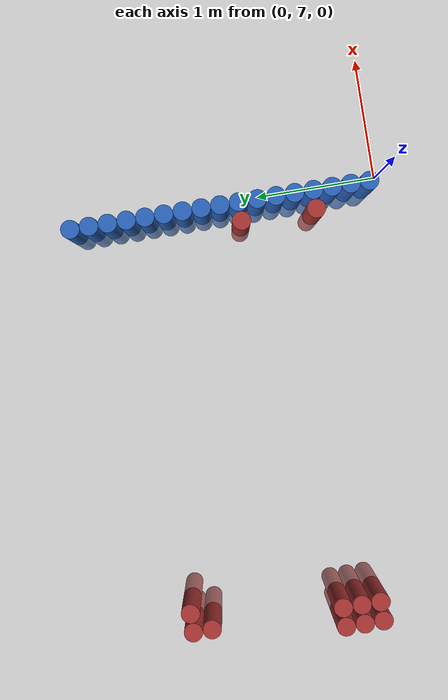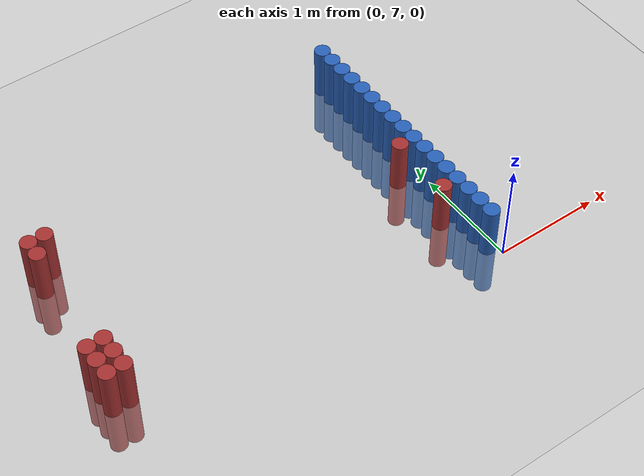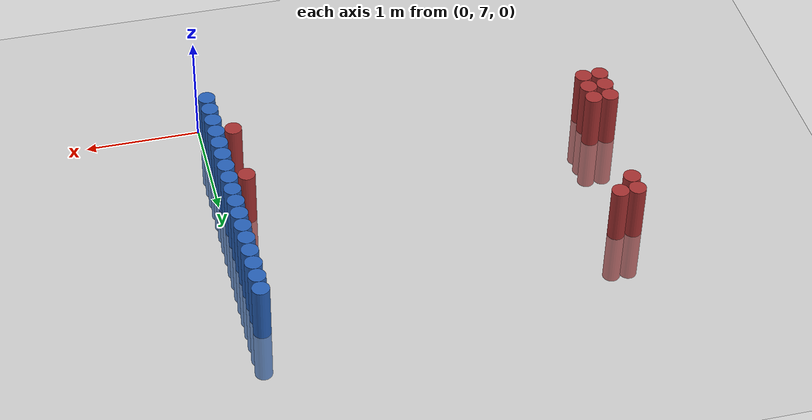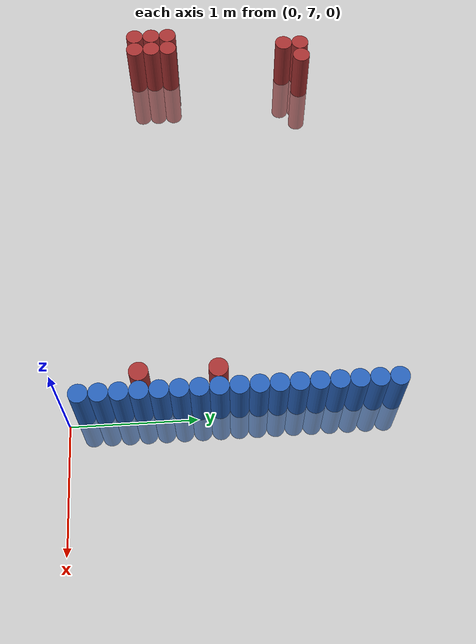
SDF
<sdf version="1.6">
 <world name="world_209">
  <model name="ground_plane">
   <static>1</static>
   <link name="link">
    <collision name="collision">
     <geometry><plane><normal>0 0 1</normal><size>100 100</size></plane></geometry>
     <surface><friction><ode><mu>100</mu><mu2>50</mu2></ode></friction></surface>
    </collision>
    <visual name="visual">
     <cast_shadows>0</cast_shadows>
     <geometry><plane><normal>0 0 1</normal><size>100 100</size></plane></geometry>
     <material>
      <script><uri>file://media/materials/scripts/gazebo.material</uri><name>Gazebo/Grey</name></script>
     </material>
    </visual>
   </link>
  </model>
  <model name="unit_cylinder_160">
   <static>1</static>
   <pose>-3.525000 7.575000 0.000000 0.000000 0.000000 0.000000</pose>
   <link name="link">
    <inertial>
     <mass>1</mass>
     <inertia><ixx>0.145833</ixx><ixy>0</ixy><ixz>0</ixz><iyy>0.145833</iyy><iyz>0</iyz><izz>0.125</izz></inertia>
    </inertial>
    <collision name="collision">
     <geometry><cylinder><radius>0.075000</radius><length>1</length></cylinder></geometry>
    </collision>
    <visual name="visual">
     <geometry><cylinder><radius>0.075000</radius><length>1</length></cylinder></geometry>
     <material>
      <ambient>0.648000 0.192000 0.192000 1</ambient>
      <diffuse>0.648000 0.192000 0.192000 1</diffuse>
     </material>
     <material>
      <script><name>Gazebo/Grey</name><uri>file://media/materials/scripts/gazebo.material</uri></script>
     </material>
    </visual>
   </link>
  </model>
  <model name="unit_cylinder_161">
   <static>1</static>
   <pose>-3.525000 7.725000 0.000000 0.000000 0.000000 0.000000</pose>
   <link name="link">
    <inertial>
     <mass>1</mass>
     <inertia><ixx>0.145833</ixx><ixy>0</ixy><ixz>0</ixz><iyy>0.145833</iyy><iyz>0</iyz><izz>0.125</izz></inertia>
    </inertial>
    <collision name="collision">
     <geometry><cylinder><radius>0.075000</radius><length>1</length></cylinder></geometry>
    </collision>
    <visual name="visual">
     <geometry><cylinder><radius>0.075000</radius><length>1</length></cylinder></geometry>
     <material>
      <ambient>0.648000 0.192000 0.192000 1</ambient>
      <diffuse>0.648000 0.192000 0.192000 1</diffuse>
     </material>
     <material>
      <script><name>Gazebo/Grey</name><uri>file://media/materials/scripts/gazebo.material</uri></script>
     </material>
    </visual>
   </link>
  </model>
  <model name="unit_cylinder_162">
   <static>1</static>
   <pose>-3.525000 7.875000 0.000000 0.000000 0.000000 0.000000</pose>
   <link name="link">
    <inertial>
     <mass>1</mass>
     <inertia><ixx>0.145833</ixx><ixy>0</ixy><ixz>0</ixz><iyy>0.145833</iyy><iyz>0</iyz><izz>0.125</izz></inertia>
    </inertial>
    <collision name="collision">
     <geometry><cylinder><radius>0.075000</radius><length>1</length></cylinder></geometry>
    </collision>
    <visual name="visual">
     <geometry><cylinder><radius>0.075000</radius><length>1</length></cylinder></geometry>
     <material>
      <ambient>0.648000 0.192000 0.192000 1</ambient>
      <diffuse>0.648000 0.192000 0.192000 1</diffuse>
     </material>
     <material>
      <script><name>Gazebo/Grey</name><uri>file://media/materials/scripts/gazebo.material</uri></script>
     </material>
    </visual>
   </link>
  </model>
  <model name="unit_cylinder_163">
   <static>1</static>
   <pose>-3.375000 7.575000 0.000000 0.000000 0.000000 0.000000</pose>
   <link name="link">
    <inertial>
     <mass>1</mass>
     <inertia><ixx>0.145833</ixx><ixy>0</ixy><ixz>0</ixz><iyy>0.145833</iyy><iyz>0</iyz><izz>0.125</izz></inertia>
    </inertial>
    <collision name="collision">
     <geometry><cylinder><radius>0.075000</radius><length>1</length></cylinder></geometry>
    </collision>
    <visual name="visual">
     <geometry><cylinder><radius>0.075000</radius><length>1</length></cylinder></geometry>
     <material>
      <ambient>0.648000 0.192000 0.192000 1</ambient>
      <diffuse>0.648000 0.192000 0.192000 1</diffuse>
     </material>
     <material>
      <script><name>Gazebo/Grey</name><uri>file://media/materials/scripts/gazebo.material</uri></script>
     </material>
    </visual>
   </link>
  </model>
  <model name="unit_cylinder_164">
   <static>1</static>
   <pose>-3.375000 7.725000 0.000000 0.000000 0.000000 0.000000</pose>
   <link name="link">
    <inertial>
     <mass>1</mass>
     <inertia><ixx>0.145833</ixx><ixy>0</ixy><ixz>0</ixz><iyy>0.145833</iyy><iyz>0</iyz><izz>0.125</izz></inertia>
    </inertial>
    <collision name="collision">
     <geometry><cylinder><radius>0.075000</radius><length>1</length></cylinder></geometry>
    </collision>
    <visual name="visual">
     <geometry><cylinder><radius>0.075000</radius><length>1</length></cylinder></geometry>
     <material>
      <ambient>0.648000 0.192000 0.192000 1</ambient>
      <diffuse>0.648000 0.192000 0.192000 1</diffuse>
     </material>
     <material>
      <script><name>Gazebo/Grey</name><uri>file://media/materials/scripts/gazebo.material</uri></script>
     </material>
    </visual>
   </link>
  </model>
  <model name="unit_cylinder_165">
   <static>1</static>
   <pose>-3.375000 7.875000 0.000000 0.000000 0.000000 0.000000</pose>
   <link name="link">
    <inertial>
     <mass>1</mass>
     <inertia><ixx>0.145833</ixx><ixy>0</ixy><ixz>0</ixz><iyy>0.145833</iyy><iyz>0</iyz><izz>0.125</izz></inertia>
    </inertial>
    <collision name="collision">
     <geometry><cylinder><radius>0.075000</radius><length>1</length></cylinder></geometry>
    </collision>
    <visual name="visual">
     <geometry><cylinder><radius>0.075000</radius><length>1</length></cylinder></geometry>
     <material>
      <ambient>0.648000 0.192000 0.192000 1</ambient>
      <diffuse>0.648000 0.192000 0.192000 1</diffuse>
     </material>
     <material>
      <script><name>Gazebo/Grey</name><uri>file://media/materials/scripts/gazebo.material</uri></script>
     </material>
    </visual>
   </link>
  </model>
  <model name="unit_cylinder_166">
   <static>1</static>
   <pose>-3.375000 8.925000 0.000000 0.000000 0.000000 0.000000</pose>
   <link name="link">
    <inertial>
     <mass>1</mass>
     <inertia><ixx>0.145833</ixx><ixy>0</ixy><ixz>0</ixz><iyy>0.145833</iyy><iyz>0</iyz><izz>0.125</izz></inertia>
    </inertial>
    <collision name="collision">
     <geometry><cylinder><radius>0.075000</radius><length>1</length></cylinder></geometry>
    </collision>
    <visual name="visual">
     <geometry><cylinder><radius>0.075000</radius><length>1</length></cylinder></geometry>
     <material>
      <ambient>0.648000 0.192000 0.192000 1</ambient>
      <diffuse>0.648000 0.192000 0.192000 1</diffuse>
     </material>
     <material>
      <script><name>Gazebo/Grey</name><uri>file://media/materials/scripts/gazebo.material</uri></script>
     </material>
    </visual>
   </link>
  </model>
  <model name="unit_cylinder_167">
   <static>1</static>
   <pose>-3.375000 9.075000 0.000000 0.000000 0.000000 0.000000</pose>
   <link name="link">
    <inertial>
     <mass>1</mass>
     <inertia><ixx>0.145833</ixx><ixy>0</ixy><ixz>0</ixz><iyy>0.145833</iyy><iyz>0</iyz><izz>0.125</izz></inertia>
    </inertial>
    <collision name="collision">
     <geometry><cylinder><radius>0.075000</radius><length>1</length></cylinder></geometry>
    </collision>
    <visual name="visual">
     <geometry><cylinder><radius>0.075000</radius><length>1</length></cylinder></geometry>
     <material>
      <ambient>0.648000 0.192000 0.192000 1</ambient>
      <diffuse>0.648000 0.192000 0.192000 1</diffuse>
     </material>
     <material>
      <script><name>Gazebo/Grey</name><uri>file://media/materials/scripts/gazebo.material</uri></script>
     </material>
    </visual>
   </link>
  </model>
  <model name="unit_cylinder_168">
   <static>1</static>
   <pose>-3.225000 9.075000 0.000000 0.000000 0.000000 0.000000</pose>
   <link name="link">
    <inertial>
     <mass>1</mass>
     <inertia><ixx>0.145833</ixx><ixy>0</ixy><ixz>0</ixz><iyy>0.145833</iyy><iyz>0</iyz><izz>0.125</izz></inertia>
    </inertial>
    <collision name="collision">
     <geometry><cylinder><radius>0.075000</radius><length>1</length></cylinder></geometry>
    </collision>
    <visual name="visual">
     <geometry><cylinder><radius>0.075000</radius><length>1</length></cylinder></geometry>
     <material>
      <ambient>0.648000 0.192000 0.192000 1</ambient>
      <diffuse>0.648000 0.192000 0.192000 1</diffuse>
     </material>
     <material>
      <script><name>Gazebo/Grey</name><uri>file://media/materials/scripts/gazebo.material</uri></script>
     </material>
    </visual>
   </link>
  </model>
  <model name="unit_cylinder_186">
   <static>1</static>
   <pose>-0.225000 7.575000 0.000000 0.000000 0.000000 0.000000</pose>
   <link name="link">
    <inertial>
     <mass>1</mass>
     <inertia><ixx>0.145833</ixx><ixy>0</ixy><ixz>0</ixz><iyy>0.145833</iyy><iyz>0</iyz><izz>0.125</izz></inertia>
    </inertial>
    <collision name="collision">
     <geometry><cylinder><radius>0.075000</radius><length>1</length></cylinder></geometry>
    </collision>
    <visual name="visual">
     <geometry><cylinder><radius>0.075000</radius><length>1</length></cylinder></geometry>
     <material>
      <ambient>0.648000 0.192000 0.192000 1</ambient>
      <diffuse>0.648000 0.192000 0.192000 1</diffuse>
     </material>
     <material>
      <script><name>Gazebo/Grey</name><uri>file://media/materials/scripts/gazebo.material</uri></script>
     </material>
    </visual>
   </link>
  </model>
  <model name="unit_cylinder_187">
   <static>1</static>
   <pose>-0.225000 8.175000 0.000000 0.000000 0.000000 0.000000</pose>
   <link name="link">
    <inertial>
     <mass>1</mass>
     <inertia><ixx>0.145833</ixx><ixy>0</ixy><ixz>0</ixz><iyy>0.145833</iyy><iyz>0</iyz><izz>0.125</izz></inertia>
    </inertial>
    <collision name="collision">
     <geometry><cylinder><radius>0.075000</radius><length>1</length></cylinder></geometry>
    </collision>
    <visual name="visual">
     <geometry><cylinder><radius>0.075000</radius><length>1</length></cylinder></geometry>
     <material>
      <ambient>0.648000 0.192000 0.192000 1</ambient>
      <diffuse>0.648000 0.192000 0.192000 1</diffuse>
     </material>
     <material>
      <script><name>Gazebo/Grey</name><uri>file://media/materials/scripts/gazebo.material</uri></script>
     </material>
    </visual>
   </link>
  </model>
  <model name="unit_cylinder_201">
   <static>1</static>
   <pose>-0.075000 7.125000 0.000000 0.000000 0.000000 0.000000</pose>
   <link name="link">
    <inertial>
     <mass>1</mass>
     <inertia><ixx>0.145833</ixx><ixy>0</ixy><ixz>0</ixz><iyy>0.145833</iyy><iyz>0</iyz><izz>0.125</izz></inertia>
    </inertial>
    <collision name="collision">
     <geometry><cylinder><radius>0.075000</radius><length>1</length></cylinder></geometry>
    </collision>
    <visual name="visual">
     <geometry><cylinder><radius>0.075000</radius><length>1</length></cylinder></geometry>
     <material>
      <ambient>0.152000 0.379000 0.720000 1</ambient>
      <diffuse>0.152000 0.379000 0.720000 1</diffuse>
     </material>
     <material>
      <script><name>Gazebo/Grey</name><uri>file://media/materials/scripts/gazebo.material</uri></script>
     </material>
    </visual>
   </link>
  </model>
  <model name="unit_cylinder_202">
   <static>1</static>
   <pose>-0.075000 7.275000 0.000000 0.000000 0.000000 0.000000</pose>
   <link name="link">
    <inertial>
     <mass>1</mass>
     <inertia><ixx>0.145833</ixx><ixy>0</ixy><ixz>0</ixz><iyy>0.145833</iyy><iyz>0</iyz><izz>0.125</izz></inertia>
    </inertial>
    <collision name="collision">
     <geometry><cylinder><radius>0.075000</radius><length>1</length></cylinder></geometry>
    </collision>
    <visual name="visual">
     <geometry><cylinder><radius>0.075000</radius><length>1</length></cylinder></geometry>
     <material>
      <ambient>0.152000 0.379000 0.720000 1</ambient>
      <diffuse>0.152000 0.379000 0.720000 1</diffuse>
     </material>
     <material>
      <script><name>Gazebo/Grey</name><uri>file://media/materials/scripts/gazebo.material</uri></script>
     </material>
    </visual>
   </link>
  </model>
  <model name="unit_cylinder_203">
   <static>1</static>
   <pose>-0.075000 7.425000 0.000000 0.000000 0.000000 0.000000</pose>
   <link name="link">
    <inertial>
     <mass>1</mass>
     <inertia><ixx>0.145833</ixx><ixy>0</ixy><ixz>0</ixz><iyy>0.145833</iyy><iyz>0</iyz><izz>0.125</izz></inertia>
    </inertial>
    <collision name="collision">
     <geometry><cylinder><radius>0.075000</radius><length>1</length></cylinder></geometry>
    </collision>
    <visual name="visual">
     <geometry><cylinder><radius>0.075000</radius><length>1</length></cylinder></geometry>
     <material>
      <ambient>0.152000 0.379000 0.720000 1</ambient>
      <diffuse>0.152000 0.379000 0.720000 1</diffuse>
     </material>
     <material>
      <script><name>Gazebo/Grey</name><uri>file://media/materials/scripts/gazebo.material</uri></script>
     </material>
    </visual>
   </link>
  </model>
  <model name="unit_cylinder_204">
   <static>1</static>
   <pose>-0.075000 7.575000 0.000000 0.000000 0.000000 0.000000</pose>
   <link name="link">
    <inertial>
     <mass>1</mass>
     <inertia><ixx>0.145833</ixx><ixy>0</ixy><ixz>0</ixz><iyy>0.145833</iyy><iyz>0</iyz><izz>0.125</izz></inertia>
    </inertial>
    <collision name="collision">
     <geometry><cylinder><radius>0.075000</radius><length>1</length></cylinder></geometry>
    </collision>
    <visual name="visual">
     <geometry><cylinder><radius>0.075000</radius><length>1</length></cylinder></geometry>
     <material>
      <ambient>0.152000 0.379000 0.720000 1</ambient>
      <diffuse>0.152000 0.379000 0.720000 1</diffuse>
     </material>
     <material>
      <script><name>Gazebo/Grey</name><uri>file://media/materials/scripts/gazebo.material</uri></script>
     </material>
    </visual>
   </link>
  </model>
  <model name="unit_cylinder_205">
   <static>1</static>
   <pose>-0.075000 7.725000 0.000000 0.000000 0.000000 0.000000</pose>
   <link name="link">
    <inertial>
     <mass>1</mass>
     <inertia><ixx>0.145833</ixx><ixy>0</ixy><ixz>0</ixz><iyy>0.145833</iyy><iyz>0</iyz><izz>0.125</izz></inertia>
    </inertial>
    <collision name="collision">
     <geometry><cylinder><radius>0.075000</radius><length>1</length></cylinder></geometry>
    </collision>
    <visual name="visual">
     <geometry><cylinder><radius>0.075000</radius><length>1</length></cylinder></geometry>
     <material>
      <ambient>0.152000 0.379000 0.720000 1</ambient>
      <diffuse>0.152000 0.379000 0.720000 1</diffuse>
     </material>
     <material>
      <script><name>Gazebo/Grey</name><uri>file://media/materials/scripts/gazebo.material</uri></script>
     </material>
    </visual>
   </link>
  </model>
  <model name="unit_cylinder_206">
   <static>1</static>
   <pose>-0.075000 7.875000 0.000000 0.000000 0.000000 0.000000</pose>
   <link name="link">
    <inertial>
     <mass>1</mass>
     <inertia><ixx>0.145833</ixx><ixy>0</ixy><ixz>0</ixz><iyy>0.145833</iyy><iyz>0</iyz><izz>0.125</izz></inertia>
    </inertial>
    <collision name="collision">
     <geometry><cylinder><radius>0.075000</radius><length>1</length></cylinder></geometry>
    </collision>
    <visual name="visual">
     <geometry><cylinder><radius>0.075000</radius><length>1</length></cylinder></geometry>
     <material>
      <ambient>0.152000 0.379000 0.720000 1</ambient>
      <diffuse>0.152000 0.379000 0.720000 1</diffuse>
     </material>
     <material>
      <script><name>Gazebo/Grey</name><uri>file://media/materials/scripts/gazebo.material</uri></script>
     </material>
    </visual>
   </link>
  </model>
  <model name="unit_cylinder_207">
   <static>1</static>
   <pose>-0.075000 8.025000 0.000000 0.000000 0.000000 0.000000</pose>
   <link name="link">
    <inertial>
     <mass>1</mass>
     <inertia><ixx>0.145833</ixx><ixy>0</ixy><ixz>0</ixz><iyy>0.145833</iyy><iyz>0</iyz><izz>0.125</izz></inertia>
    </inertial>
    <collision name="collision">
     <geometry><cylinder><radius>0.075000</radius><length>1</length></cylinder></geometry>
    </collision>
    <visual name="visual">
     <geometry><cylinder><radius>0.075000</radius><length>1</length></cylinder></geometry>
     <material>
      <ambient>0.152000 0.379000 0.720000 1</ambient>
      <diffuse>0.152000 0.379000 0.720000 1</diffuse>
     </material>
     <material>
      <script><name>Gazebo/Grey</name><uri>file://media/materials/scripts/gazebo.material</uri></script>
     </material>
    </visual>
   </link>
  </model>
  <model name="unit_cylinder_208">
   <static>1</static>
   <pose>-0.075000 8.175000 0.000000 0.000000 0.000000 0.000000</pose>
   <link name="link">
    <inertial>
     <mass>1</mass>
     <inertia><ixx>0.145833</ixx><ixy>0</ixy><ixz>0</ixz><iyy>0.145833</iyy><iyz>0</iyz><izz>0.125</izz></inertia>
    </inertial>
    <collision name="collision">
     <geometry><cylinder><radius>0.075000</radius><length>1</length></cylinder></geometry>
    </collision>
    <visual name="visual">
     <geometry><cylinder><radius>0.075000</radius><length>1</length></cylinder></geometry>
     <material>
      <ambient>0.152000 0.379000 0.720000 1</ambient>
      <diffuse>0.152000 0.379000 0.720000 1</diffuse>
     </material>
     <material>
      <script><name>Gazebo/Grey</name><uri>file://media/materials/scripts/gazebo.material</uri></script>
     </material>
    </visual>
   </link>
  </model>
  <model name="unit_cylinder_209">
   <static>1</static>
   <pose>-0.075000 8.325000 0.000000 0.000000 0.000000 0.000000</pose>
   <link name="link">
    <inertial>
     <mass>1</mass>
     <inertia><ixx>0.145833</ixx><ixy>0</ixy><ixz>0</ixz><iyy>0.145833</iyy><iyz>0</iyz><izz>0.125</izz></inertia>
    </inertial>
    <collision name="collision">
     <geometry><cylinder><radius>0.075000</radius><length>1</length></cylinder></geometry>
    </collision>
    <visual name="visual">
     <geometry><cylinder><radius>0.075000</radius><length>1</length></cylinder></geometry>
     <material>
      <ambient>0.152000 0.379000 0.720000 1</ambient>
      <diffuse>0.152000 0.379000 0.720000 1</diffuse>
     </material>
     <material>
      <script><name>Gazebo/Grey</name><uri>file://media/materials/scripts/gazebo.material</uri></script>
     </material>
    </visual>
   </link>
  </model>
  <model name="unit_cylinder_210">
   <static>1</static>
   <pose>-0.075000 8.475000 0.000000 0.000000 0.000000 0.000000</pose>
   <link name="link">
    <inertial>
     <mass>1</mass>
     <inertia><ixx>0.145833</ixx><ixy>0</ixy><ixz>0</ixz><iyy>0.145833</iyy><iyz>0</iyz><izz>0.125</izz></inertia>
    </inertial>
    <collision name="collision">
     <geometry><cylinder><radius>0.075000</radius><length>1</length></cylinder></geometry>
    </collision>
    <visual name="visual">
     <geometry><cylinder><radius>0.075000</radius><length>1</length></cylinder></geometry>
     <material>
      <ambient>0.152000 0.379000 0.720000 1</ambient>
      <diffuse>0.152000 0.379000 0.720000 1</diffuse>
     </material>
     <material>
      <script><name>Gazebo/Grey</name><uri>file://media/materials/scripts/gazebo.material</uri></script>
     </material>
    </visual>
   </link>
  </model>
  <model name="unit_cylinder_211">
   <static>1</static>
   <pose>-0.075000 8.625000 0.000000 0.000000 0.000000 0.000000</pose>
   <link name="link">
    <inertial>
     <mass>1</mass>
     <inertia><ixx>0.145833</ixx><ixy>0</ixy><ixz>0</ixz><iyy>0.145833</iyy><iyz>0</iyz><izz>0.125</izz></inertia>
    </inertial>
    <collision name="collision">
     <geometry><cylinder><radius>0.075000</radius><length>1</length></cylinder></geometry>
    </collision>
    <visual name="visual">
     <geometry><cylinder><radius>0.075000</radius><length>1</length></cylinder></geometry>
     <material>
      <ambient>0.152000 0.379000 0.720000 1</ambient>
      <diffuse>0.152000 0.379000 0.720000 1</diffuse>
     </material>
     <material>
      <script><name>Gazebo/Grey</name><uri>file://media/materials/scripts/gazebo.material</uri></script>
     </material>
    </visual>
   </link>
  </model>
  <model name="unit_cylinder_212">
   <static>1</static>
   <pose>-0.075000 8.775000 0.000000 0.000000 0.000000 0.000000</pose>
   <link name="link">
    <inertial>
     <mass>1</mass>
     <inertia><ixx>0.145833</ixx><ixy>0</ixy><ixz>0</ixz><iyy>0.145833</iyy><iyz>0</iyz><izz>0.125</izz></inertia>
    </inertial>
    <collision name="collision">
     <geometry><cylinder><radius>0.075000</radius><length>1</length></cylinder></geometry>
    </collision>
    <visual name="visual">
     <geometry><cylinder><radius>0.075000</radius><length>1</length></cylinder></geometry>
     <material>
      <ambient>0.152000 0.379000 0.720000 1</ambient>
      <diffuse>0.152000 0.379000 0.720000 1</diffuse>
     </material>
     <material>
      <script><name>Gazebo/Grey</name><uri>file://media/materials/scripts/gazebo.material</uri></script>
     </material>
    </visual>
   </link>
  </model>
  <model name="unit_cylinder_213">
   <static>1</static>
   <pose>-0.075000 8.925000 0.000000 0.000000 0.000000 0.000000</pose>
   <link name="link">
    <inertial>
     <mass>1</mass>
     <inertia><ixx>0.145833</ixx><ixy>0</ixy><ixz>0</ixz><iyy>0.145833</iyy><iyz>0</iyz><izz>0.125</izz></inertia>
    </inertial>
    <collision name="collision">
     <geometry><cylinder><radius>0.075000</radius><length>1</length></cylinder></geometry>
    </collision>
    <visual name="visual">
     <geometry><cylinder><radius>0.075000</radius><length>1</length></cylinder></geometry>
     <material>
      <ambient>0.152000 0.379000 0.720000 1</ambient>
      <diffuse>0.152000 0.379000 0.720000 1</diffuse>
     </material>
     <material>
      <script><name>Gazebo/Grey</name><uri>file://media/materials/scripts/gazebo.material</uri></script>
     </material>
    </visual>
   </link>
  </model>
  <model name="unit_cylinder_214">
   <static>1</static>
   <pose>-0.075000 9.075000 0.000000 0.000000 0.000000 0.000000</pose>
   <link name="link">
    <inertial>
     <mass>1</mass>
     <inertia><ixx>0.145833</ixx><ixy>0</ixy><ixz>0</ixz><iyy>0.145833</iyy><iyz>0</iyz><izz>0.125</izz></inertia>
    </inertial>
    <collision name="collision">
     <geometry><cylinder><radius>0.075000</radius><length>1</length></cylinder></geometry>
    </collision>
    <visual name="visual">
     <geometry><cylinder><radius>0.075000</radius><length>1</length></cylinder></geometry>
     <material>
      <ambient>0.152000 0.379000 0.720000 1</ambient>
      <diffuse>0.152000 0.379000 0.720000 1</diffuse>
     </material>
     <material>
      <script><name>Gazebo/Grey</name><uri>file://media/materials/scripts/gazebo.material</uri></script>
     </material>
    </visual>
   </link>
  </model>
  <model name="unit_cylinder_215">
   <static>1</static>
   <pose>-0.075000 9.225000 0.000000 0.000000 0.000000 0.000000</pose>
   <link name="link">
    <inertial>
     <mass>1</mass>
     <inertia><ixx>0.145833</ixx><ixy>0</ixy><ixz>0</ixz><iyy>0.145833</iyy><iyz>0</iyz><izz>0.125</izz></inertia>
    </inertial>
    <collision name="collision">
     <geometry><cylinder><radius>0.075000</radius><length>1</length></cylinder></geometry>
    </collision>
    <visual name="visual">
     <geometry><cylinder><radius>0.075000</radius><length>1</length></cylinder></geometry>
     <material>
      <ambient>0.152000 0.379000 0.720000 1</ambient>
      <diffuse>0.152000 0.379000 0.720000 1</diffuse>
     </material>
     <material>
      <script><name>Gazebo/Grey</name><uri>file://media/materials/scripts/gazebo.material</uri></script>
     </material>
    </visual>
   </link>
  </model>
  <model name="unit_cylinder_216">
   <static>1</static>
   <pose>-0.075000 9.375000 0.000000 0.000000 0.000000 0.000000</pose>
   <link name="link">
    <inertial>
     <mass>1</mass>
     <inertia><ixx>0.145833</ixx><ixy>0</ixy><ixz>0</ixz><iyy>0.145833</iyy><iyz>0</iyz><izz>0.125</izz></inertia>
    </inertial>
    <collision name="collision">
     <geometry><cylinder><radius>0.075000</radius><length>1</length></cylinder></geometry>
    </collision>
    <visual name="visual">
     <geometry><cylinder><radius>0.075000</radius><length>1</length></cylinder></geometry>
     <material>
      <ambient>0.152000 0.379000 0.720000 1</ambient>
      <diffuse>0.152000 0.379000 0.720000 1</diffuse>
     </material>
     <material>
      <script><name>Gazebo/Grey</name><uri>file://media/materials/scripts/gazebo.material</uri></script>
     </material>
    </visual>
   </link>
  </model>
  <model name="unit_cylinder_217">
   <static>1</static>
   <pose>-0.075000 9.525000 0.000000 0.000000 0.000000 0.000000</pose>
   <link name="link">
    <inertial>
     <mass>1</mass>
     <inertia><ixx>0.145833</ixx><ixy>0</ixy><ixz>0</ixz><iyy>0.145833</iyy><iyz>0</iyz><izz>0.125</izz></inertia>
    </inertial>
    <collision name="collision">
     <geometry><cylinder><radius>0.075000</radius><length>1</length></cylinder></geometry>
    </collision>
    <visual name="visual">
     <geometry><cylinder><radius>0.075000</radius><length>1</length></cylinder></geometry>
     <material>
      <ambient>0.152000 0.379000 0.720000 1</ambient>
      <diffuse>0.152000 0.379000 0.720000 1</diffuse>
     </material>
     <material>
      <script><name>Gazebo/Grey</name><uri>file://media/materials/scripts/gazebo.material</uri></script>
     </material>
    </visual>
   </link>
  </model>
 </world>
</sdf>
